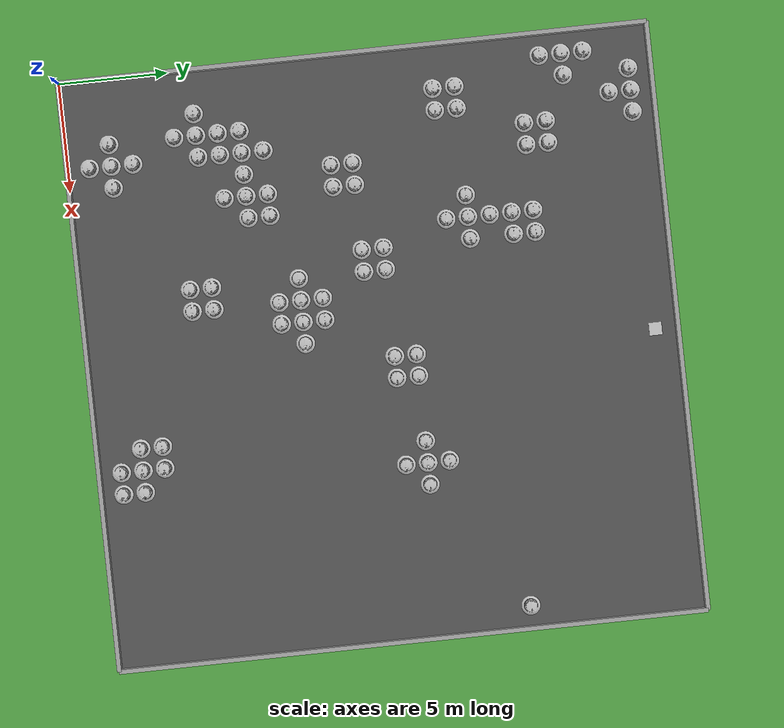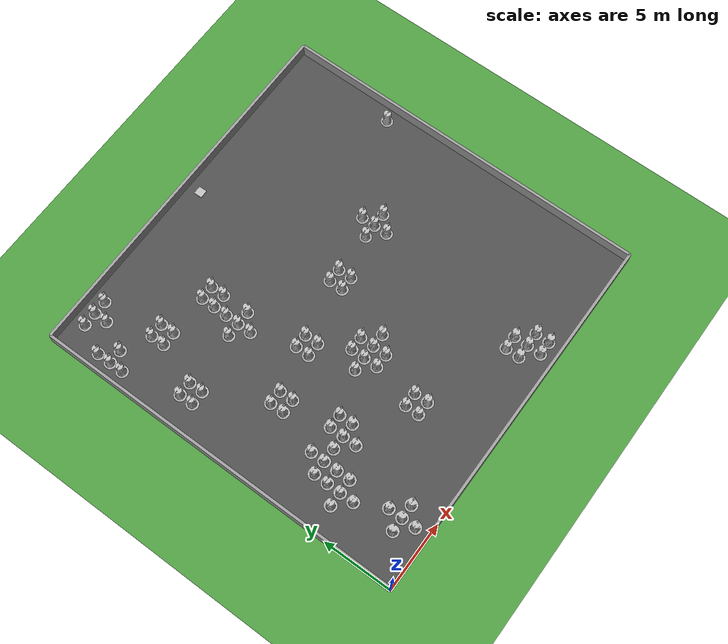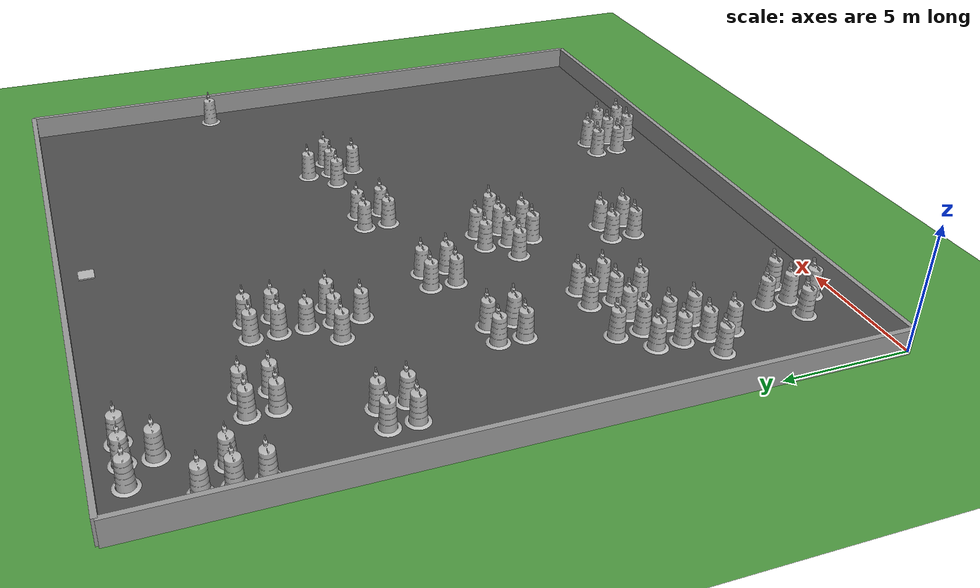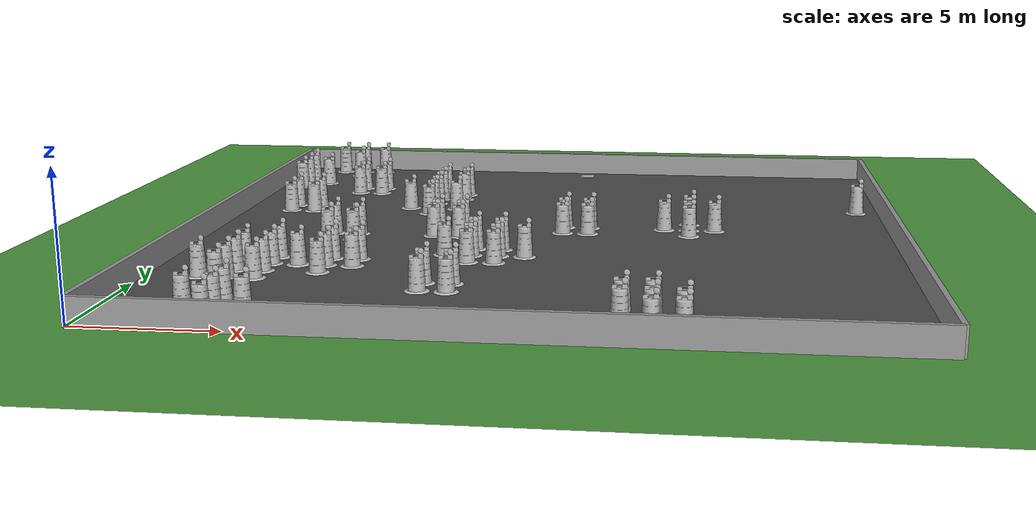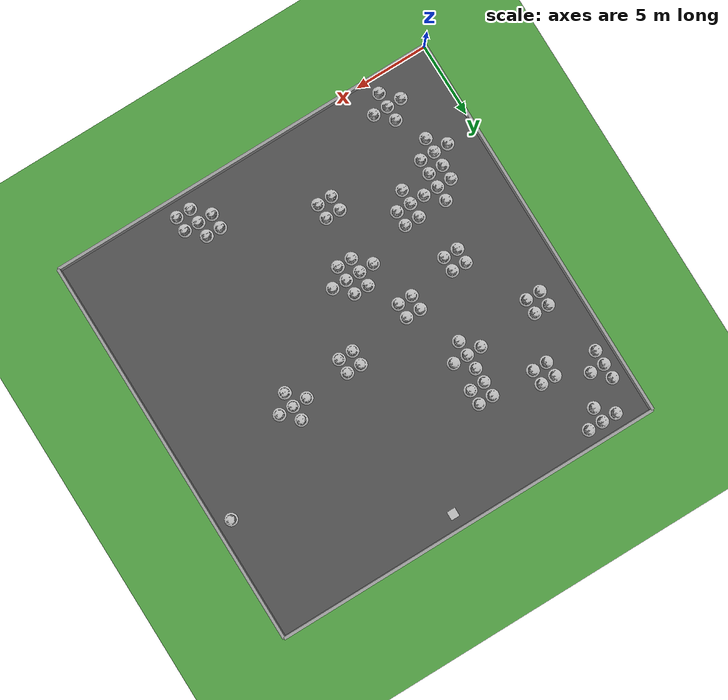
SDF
<sdf version="1.4">
 <world name="default">
  <model name="vrc_driving_terrain">
   <static>1</static>
   <link name="grass_plane">
    <visual name="visual_0">
     <cast_shadows>0</cast_shadows>
     <geometry><plane><normal>0 0 1</normal><size>150 150</size></plane></geometry>
     <material>
      <script>
       <uri>model://vrc_driving_terrain/materials/scripts</uri>
       <uri>model://vrc_driving_terrain/materials/textures</uri>
       <name>vrc/grass</name>
      </script>
     </material>
    </visual>
   </link>
   <pose>0 0 0.01 0 -0 0</pose>
  </model>
  <include><uri>model://ground_plane</uri></include>
  <include><uri>model://sun</uri></include>
  <plugin filename="librotors_gazebo_ros_interface_plugin.so" name="ros_interface_plugin"/>
  <spherical_coordinates>
   <surface_model>EARTH_WGS84</surface_model>
   <latitude_deg>47.3667</latitude_deg>
   <longitude_deg>8.5500</longitude_deg>
   <elevation>500.0</elevation>
   <heading_deg>0</heading_deg>
  </spherical_coordinates>
  <physics type="ode">
   <ode>
    <solver><type>quick</type><iters>1000</iters><sor>1.3</sor></solver>
    <constraints>
     <cfm>0</cfm>
     <erp>0.2</erp>
     <contact_max_correcting_vel>100</contact_max_correcting_vel>
     <contact_surface_layer>0.001</contact_surface_layer>
    </constraints>
   </ode>
   <max_step_size>0.01</max_step_size>
   <real_time_factor>1</real_time_factor>
   <real_time_update_rate>100</real_time_update_rate>
   <gravity>0 0 -9.8</gravity>
  </physics>
  <model name="box_target_green">
   <static>1</static>
   <link name="link">
    <pose>14 26 0 0 0 0</pose>
    <collision name="collision"><geometry><box><size>6 6 2</size></box></geometry></collision>
    <visual name="visual">
     <geometry>
      <mesh><uri>model://box_target_green/meshes/mesh.dae</uri><scale>0.1 0.1 0.1</scale></mesh>
     </geometry>
    </visual>
   </link>
  </model>
  <model name="grey_wall">
   <static>1</static>
   <link name="link">
    <visual name="visual">
     <cast_shadows>0</cast_shadows>
     <geometry><box><size>27 0.2 2</size></box></geometry>
     <material>
      <script>
       <uri>model://grey_wall/materials/scripts</uri>
       <uri>model://grey_wall/materials/textures</uri>
       <name>vrc/grey_wall</name>
      </script>
     </material>
    </visual>
   </link>
   <pose>13.5 0 0 0 0 0</pose>
  </model>
  <model name="grey_wall">
   <static>1</static>
   <link name="link">
    <visual name="visual">
     <cast_shadows>0</cast_shadows>
     <geometry><box><size>27 0.2 2</size></box></geometry>
     <material>
      <script>
       <uri>model://grey_wall/materials/scripts</uri>
       <uri>model://grey_wall/materials/textures</uri>
       <name>vrc/grey_wall</name>
      </script>
     </material>
    </visual>
   </link>
   <pose>0 13.5 0 0 0 1.57079632679</pose>
  </model>
  <model name="grey_wall">
   <static>1</static>
   <link name="link">
    <visual name="visual">
     <cast_shadows>0</cast_shadows>
     <geometry><box><size>27 0.2 2</size></box></geometry>
     <material>
      <script>
       <uri>model://grey_wall/materials/scripts</uri>
       <uri>model://grey_wall/materials/textures</uri>
       <name>vrc/grey_wall</name>
      </script>
     </material>
    </visual>
   </link>
   <pose>27 13.5 0 0 0 -1.57079632679</pose>
  </model>
  <model name="grey_wall">
   <static>1</static>
   <link name="link">
    <visual name="visual">
     <cast_shadows>0</cast_shadows>
     <geometry><box><size>27 0.2 2</size></box></geometry>
     <material>
      <script>
       <uri>model://grey_wall/materials/scripts</uri>
       <uri>model://grey_wall/materials/textures</uri>
       <name>vrc/grey_wall</name>
      </script>
     </material>
    </visual>
   </link>
   <pose>13.5 27 0 0 0 3.14159265359</pose>
  </model>
  <model name="asphalt_plane">
   <static>1</static>
   <link name="link">
    <visual name="visual">
     <cast_shadows>0</cast_shadows>
     <geometry><box><size>27 27 0.1</size></box></geometry>
     <material>
      <script>
       <uri>model://asphalt_plane/materials/scripts</uri>
       <uri>model://asphalt_plane/materials/textures</uri>
       <name>vrc/asphalt</name>
      </script>
     </material>
    </visual>
   </link>
   <pose>13.5 13.5 0 0 0 0</pose>
  </model>
  <model name="Construction Barrel">
   <link name="link">
    <collision name="collision">
     <geometry>
      <mesh><uri>model://construction_barrel/meshes/construction_barrel.dae</uri><scale>1 1 1</scale></mesh>
     </geometry>
    </collision>
    <visual name="visual">
     <geometry><mesh><uri>model://construction_barrel/meshes/construction_barrel.dae</uri></mesh></geometry>
    </visual>
   </link>
   <pose>1 22 0 0 0 0</pose>
   <static>1</static>
  </model>
  <model name="Construction Barrel">
   <link name="link">
    <collision name="collision">
     <geometry>
      <mesh><uri>model://construction_barrel/meshes/construction_barrel.dae</uri><scale>1 1 1</scale></mesh>
     </geometry>
    </collision>
    <visual name="visual">
     <geometry><mesh><uri>model://construction_barrel/meshes/construction_barrel.dae</uri></mesh></geometry>
    </visual>
   </link>
   <pose>1 23 0 0 0 0</pose>
   <static>1</static>
  </model>
  <model name="Construction Barrel">
   <link name="link">
    <collision name="collision">
     <geometry>
      <mesh><uri>model://construction_barrel/meshes/construction_barrel.dae</uri><scale>1 1 1</scale></mesh>
     </geometry>
    </collision>
    <visual name="visual">
     <geometry><mesh><uri>model://construction_barrel/meshes/construction_barrel.dae</uri></mesh></geometry>
    </visual>
   </link>
   <pose>1 24 0 0 0 0</pose>
   <static>1</static>
  </model>
  <model name="Construction Barrel">
   <link name="link">
    <collision name="collision">
     <geometry>
      <mesh><uri>model://construction_barrel/meshes/construction_barrel.dae</uri><scale>1 1 1</scale></mesh>
     </geometry>
    </collision>
    <visual name="visual">
     <geometry><mesh><uri>model://construction_barrel/meshes/construction_barrel.dae</uri></mesh></geometry>
    </visual>
   </link>
   <pose>2 6 0 0 0 0</pose>
   <static>1</static>
  </model>
  <model name="Construction Barrel">
   <link name="link">
    <collision name="collision">
     <geometry>
      <mesh><uri>model://construction_barrel/meshes/construction_barrel.dae</uri><scale>1 1 1</scale></mesh>
     </geometry>
    </collision>
    <visual name="visual">
     <geometry><mesh><uri>model://construction_barrel/meshes/construction_barrel.dae</uri></mesh></geometry>
    </visual>
   </link>
   <pose>2 17 0 0 0 0</pose>
   <static>1</static>
  </model>
  <model name="Construction Barrel">
   <link name="link">
    <collision name="collision">
     <geometry>
      <mesh><uri>model://construction_barrel/meshes/construction_barrel.dae</uri><scale>1 1 1</scale></mesh>
     </geometry>
    </collision>
    <visual name="visual">
     <geometry><mesh><uri>model://construction_barrel/meshes/construction_barrel.dae</uri></mesh></geometry>
    </visual>
   </link>
   <pose>2 18 0 0 0 0</pose>
   <static>1</static>
  </model>
  <model name="Construction Barrel">
   <link name="link">
    <collision name="collision">
     <geometry>
      <mesh><uri>model://construction_barrel/meshes/construction_barrel.dae</uri><scale>1 1 1</scale></mesh>
     </geometry>
    </collision>
    <visual name="visual">
     <geometry><mesh><uri>model://construction_barrel/meshes/construction_barrel.dae</uri></mesh></geometry>
    </visual>
   </link>
   <pose>2 23 0 0 0 0</pose>
   <static>1</static>
  </model>
  <model name="Construction Barrel">
   <link name="link">
    <collision name="collision">
     <geometry>
      <mesh><uri>model://construction_barrel/meshes/construction_barrel.dae</uri><scale>1 1 1</scale></mesh>
     </geometry>
    </collision>
    <visual name="visual">
     <geometry><mesh><uri>model://construction_barrel/meshes/construction_barrel.dae</uri></mesh></geometry>
    </visual>
   </link>
   <pose>2 26 0 0 0 0</pose>
   <static>1</static>
  </model>
  <model name="Construction Barrel">
   <link name="link">
    <collision name="collision">
     <geometry>
      <mesh><uri>model://construction_barrel/meshes/construction_barrel.dae</uri><scale>1 1 1</scale></mesh>
     </geometry>
    </collision>
    <visual name="visual">
     <geometry><mesh><uri>model://construction_barrel/meshes/construction_barrel.dae</uri></mesh></geometry>
    </visual>
   </link>
   <pose>3 2 0 0 0 0</pose>
   <static>1</static>
  </model>
  <model name="Construction Barrel">
   <link name="link">
    <collision name="collision">
     <geometry>
      <mesh><uri>model://construction_barrel/meshes/construction_barrel.dae</uri><scale>1 1 1</scale></mesh>
     </geometry>
    </collision>
    <visual name="visual">
     <geometry><mesh><uri>model://construction_barrel/meshes/construction_barrel.dae</uri></mesh></geometry>
    </visual>
   </link>
   <pose>3 5 0 0 0 0</pose>
   <static>1</static>
  </model>
  <model name="Construction Barrel">
   <link name="link">
    <collision name="collision">
     <geometry>
      <mesh><uri>model://construction_barrel/meshes/construction_barrel.dae</uri><scale>1 1 1</scale></mesh>
     </geometry>
    </collision>
    <visual name="visual">
     <geometry><mesh><uri>model://construction_barrel/meshes/construction_barrel.dae</uri></mesh></geometry>
    </visual>
   </link>
   <pose>3 6 0 0 0 0</pose>
   <static>1</static>
  </model>
  <model name="Construction Barrel">
   <link name="link">
    <collision name="collision">
     <geometry>
      <mesh><uri>model://construction_barrel/meshes/construction_barrel.dae</uri><scale>1 1 1</scale></mesh>
     </geometry>
    </collision>
    <visual name="visual">
     <geometry><mesh><uri>model://construction_barrel/meshes/construction_barrel.dae</uri></mesh></geometry>
    </visual>
   </link>
   <pose>3 7 0 0 0 0</pose>
   <static>1</static>
  </model>
  <model name="Construction Barrel">
   <link name="link">
    <collision name="collision">
     <geometry>
      <mesh><uri>model://construction_barrel/meshes/construction_barrel.dae</uri><scale>1 1 1</scale></mesh>
     </geometry>
    </collision>
    <visual name="visual">
     <geometry><mesh><uri>model://construction_barrel/meshes/construction_barrel.dae</uri></mesh></geometry>
    </visual>
   </link>
   <pose>3 8 0 0 0 0</pose>
   <static>1</static>
  </model>
  <model name="Construction Barrel">
   <link name="link">
    <collision name="collision">
     <geometry>
      <mesh><uri>model://construction_barrel/meshes/construction_barrel.dae</uri><scale>1 1 1</scale></mesh>
     </geometry>
    </collision>
    <visual name="visual">
     <geometry><mesh><uri>model://construction_barrel/meshes/construction_barrel.dae</uri></mesh></geometry>
    </visual>
   </link>
   <pose>3 17 0 0 0 0</pose>
   <static>1</static>
  </model>
  <model name="Construction Barrel">
   <link name="link">
    <collision name="collision">
     <geometry>
      <mesh><uri>model://construction_barrel/meshes/construction_barrel.dae</uri><scale>1 1 1</scale></mesh>
     </geometry>
    </collision>
    <visual name="visual">
     <geometry><mesh><uri>model://construction_barrel/meshes/construction_barrel.dae</uri></mesh></geometry>
    </visual>
   </link>
   <pose>3 18 0 0 0 0</pose>
   <static>1</static>
  </model>
  <model name="Construction Barrel">
   <link name="link">
    <collision name="collision">
     <geometry>
      <mesh><uri>model://construction_barrel/meshes/construction_barrel.dae</uri><scale>1 1 1</scale></mesh>
     </geometry>
    </collision>
    <visual name="visual">
     <geometry><mesh><uri>model://construction_barrel/meshes/construction_barrel.dae</uri></mesh></geometry>
    </visual>
   </link>
   <pose>3 25 0 0 0 0</pose>
   <static>1</static>
  </model>
  <model name="Construction Barrel">
   <link name="link">
    <collision name="collision">
     <geometry>
      <mesh><uri>model://construction_barrel/meshes/construction_barrel.dae</uri><scale>1 1 1</scale></mesh>
     </geometry>
    </collision>
    <visual name="visual">
     <geometry><mesh><uri>model://construction_barrel/meshes/construction_barrel.dae</uri></mesh></geometry>
    </visual>
   </link>
   <pose>3 26 0 0 0 0</pose>
   <static>1</static>
  </model>
  <model name="Construction Barrel">
   <link name="link">
    <collision name="collision">
     <geometry>
      <mesh><uri>model://construction_barrel/meshes/construction_barrel.dae</uri><scale>1 1 1</scale></mesh>
     </geometry>
    </collision>
    <visual name="visual">
     <geometry><mesh><uri>model://construction_barrel/meshes/construction_barrel.dae</uri></mesh></geometry>
    </visual>
   </link>
   <pose>4 1 0 0 0 0</pose>
   <static>1</static>
  </model>
  <model name="Construction Barrel">
   <link name="link">
    <collision name="collision">
     <geometry>
      <mesh><uri>model://construction_barrel/meshes/construction_barrel.dae</uri><scale>1 1 1</scale></mesh>
     </geometry>
    </collision>
    <visual name="visual">
     <geometry><mesh><uri>model://construction_barrel/meshes/construction_barrel.dae</uri></mesh></geometry>
    </visual>
   </link>
   <pose>4 2 0 0 0 0</pose>
   <static>1</static>
  </model>
  <model name="Construction Barrel">
   <link name="link">
    <collision name="collision">
     <geometry>
      <mesh><uri>model://construction_barrel/meshes/construction_barrel.dae</uri><scale>1 1 1</scale></mesh>
     </geometry>
    </collision>
    <visual name="visual">
     <geometry><mesh><uri>model://construction_barrel/meshes/construction_barrel.dae</uri></mesh></geometry>
    </visual>
   </link>
   <pose>4 3 0 0 0 0</pose>
   <static>1</static>
  </model>
  <model name="Construction Barrel">
   <link name="link">
    <collision name="collision">
     <geometry>
      <mesh><uri>model://construction_barrel/meshes/construction_barrel.dae</uri><scale>1 1 1</scale></mesh>
     </geometry>
    </collision>
    <visual name="visual">
     <geometry><mesh><uri>model://construction_barrel/meshes/construction_barrel.dae</uri></mesh></geometry>
    </visual>
   </link>
   <pose>4 6 0 0 0 0</pose>
   <static>1</static>
  </model>
  <model name="Construction Barrel">
   <link name="link">
    <collision name="collision">
     <geometry>
      <mesh><uri>model://construction_barrel/meshes/construction_barrel.dae</uri><scale>1 1 1</scale></mesh>
     </geometry>
    </collision>
    <visual name="visual">
     <geometry><mesh><uri>model://construction_barrel/meshes/construction_barrel.dae</uri></mesh></geometry>
    </visual>
   </link>
   <pose>4 7 0 0 0 0</pose>
   <static>1</static>
  </model>
  <model name="Construction Barrel">
   <link name="link">
    <collision name="collision">
     <geometry>
      <mesh><uri>model://construction_barrel/meshes/construction_barrel.dae</uri><scale>1 1 1</scale></mesh>
     </geometry>
    </collision>
    <visual name="visual">
     <geometry><mesh><uri>model://construction_barrel/meshes/construction_barrel.dae</uri></mesh></geometry>
    </visual>
   </link>
   <pose>4 8 0 0 0 0</pose>
   <static>1</static>
  </model>
  <model name="Construction Barrel">
   <link name="link">
    <collision name="collision">
     <geometry>
      <mesh><uri>model://construction_barrel/meshes/construction_barrel.dae</uri><scale>1 1 1</scale></mesh>
     </geometry>
    </collision>
    <visual name="visual">
     <geometry><mesh><uri>model://construction_barrel/meshes/construction_barrel.dae</uri></mesh></geometry>
    </visual>
   </link>
   <pose>4 9 0 0 0 0</pose>
   <static>1</static>
  </model>
  <model name="Construction Barrel">
   <link name="link">
    <collision name="collision">
     <geometry>
      <mesh><uri>model://construction_barrel/meshes/construction_barrel.dae</uri><scale>1 1 1</scale></mesh>
     </geometry>
    </collision>
    <visual name="visual">
     <geometry><mesh><uri>model://construction_barrel/meshes/construction_barrel.dae</uri></mesh></geometry>
    </visual>
   </link>
   <pose>4 21 0 0 0 0</pose>
   <static>1</static>
  </model>
  <model name="Construction Barrel">
   <link name="link">
    <collision name="collision">
     <geometry>
      <mesh><uri>model://construction_barrel/meshes/construction_barrel.dae</uri><scale>1 1 1</scale></mesh>
     </geometry>
    </collision>
    <visual name="visual">
     <geometry><mesh><uri>model://construction_barrel/meshes/construction_barrel.dae</uri></mesh></geometry>
    </visual>
   </link>
   <pose>4 22 0 0 0 0</pose>
   <static>1</static>
  </model>
  <model name="Construction Barrel">
   <link name="link">
    <collision name="collision">
     <geometry>
      <mesh><uri>model://construction_barrel/meshes/construction_barrel.dae</uri><scale>1 1 1</scale></mesh>
     </geometry>
    </collision>
    <visual name="visual">
     <geometry><mesh><uri>model://construction_barrel/meshes/construction_barrel.dae</uri></mesh></geometry>
    </visual>
   </link>
   <pose>4 26 0 0 0 0</pose>
   <static>1</static>
  </model>
  <model name="Construction Barrel">
   <link name="link">
    <collision name="collision">
     <geometry>
      <mesh><uri>model://construction_barrel/meshes/construction_barrel.dae</uri><scale>1 1 1</scale></mesh>
     </geometry>
    </collision>
    <visual name="visual">
     <geometry><mesh><uri>model://construction_barrel/meshes/construction_barrel.dae</uri></mesh></geometry>
    </visual>
   </link>
   <pose>5 2 0 0 0 0</pose>
   <static>1</static>
  </model>
  <model name="Construction Barrel">
   <link name="link">
    <collision name="collision">
     <geometry>
      <mesh><uri>model://construction_barrel/meshes/construction_barrel.dae</uri><scale>1 1 1</scale></mesh>
     </geometry>
    </collision>
    <visual name="visual">
     <geometry><mesh><uri>model://construction_barrel/meshes/construction_barrel.dae</uri></mesh></geometry>
    </visual>
   </link>
   <pose>5 8 0 0 0 0</pose>
   <static>1</static>
  </model>
  <model name="Construction Barrel">
   <link name="link">
    <collision name="collision">
     <geometry>
      <mesh><uri>model://construction_barrel/meshes/construction_barrel.dae</uri><scale>1 1 1</scale></mesh>
     </geometry>
    </collision>
    <visual name="visual">
     <geometry><mesh><uri>model://construction_barrel/meshes/construction_barrel.dae</uri></mesh></geometry>
    </visual>
   </link>
   <pose>5 12 0 0 0 0</pose>
   <static>1</static>
  </model>
  <model name="Construction Barrel">
   <link name="link">
    <collision name="collision">
     <geometry>
      <mesh><uri>model://construction_barrel/meshes/construction_barrel.dae</uri><scale>1 1 1</scale></mesh>
     </geometry>
    </collision>
    <visual name="visual">
     <geometry><mesh><uri>model://construction_barrel/meshes/construction_barrel.dae</uri></mesh></geometry>
    </visual>
   </link>
   <pose>5 13 0 0 0 0</pose>
   <static>1</static>
  </model>
  <model name="Construction Barrel">
   <link name="link">
    <collision name="collision">
     <geometry>
      <mesh><uri>model://construction_barrel/meshes/construction_barrel.dae</uri><scale>1 1 1</scale></mesh>
     </geometry>
    </collision>
    <visual name="visual">
     <geometry><mesh><uri>model://construction_barrel/meshes/construction_barrel.dae</uri></mesh></geometry>
    </visual>
   </link>
   <pose>5 21 0 0 0 0</pose>
   <static>1</static>
  </model>
  <model name="Construction Barrel">
   <link name="link">
    <collision name="collision">
     <geometry>
      <mesh><uri>model://construction_barrel/meshes/construction_barrel.dae</uri><scale>1 1 1</scale></mesh>
     </geometry>
    </collision>
    <visual name="visual">
     <geometry><mesh><uri>model://construction_barrel/meshes/construction_barrel.dae</uri></mesh></geometry>
    </visual>
   </link>
   <pose>5 22 0 0 0 0</pose>
   <static>1</static>
  </model>
  <model name="Construction Barrel">
   <link name="link">
    <collision name="collision">
     <geometry>
      <mesh><uri>model://construction_barrel/meshes/construction_barrel.dae</uri><scale>1 1 1</scale></mesh>
     </geometry>
    </collision>
    <visual name="visual">
     <geometry><mesh><uri>model://construction_barrel/meshes/construction_barrel.dae</uri></mesh></geometry>
    </visual>
   </link>
   <pose>6 7 0 0 0 0</pose>
   <static>1</static>
  </model>
  <model name="Construction Barrel">
   <link name="link">
    <collision name="collision">
     <geometry>
      <mesh><uri>model://construction_barrel/meshes/construction_barrel.dae</uri><scale>1 1 1</scale></mesh>
     </geometry>
    </collision>
    <visual name="visual">
     <geometry><mesh><uri>model://construction_barrel/meshes/construction_barrel.dae</uri></mesh></geometry>
    </visual>
   </link>
   <pose>6 8 0 0 0 0</pose>
   <static>1</static>
  </model>
  <model name="Construction Barrel">
   <link name="link">
    <collision name="collision">
     <geometry>
      <mesh><uri>model://construction_barrel/meshes/construction_barrel.dae</uri><scale>1 1 1</scale></mesh>
     </geometry>
    </collision>
    <visual name="visual">
     <geometry><mesh><uri>model://construction_barrel/meshes/construction_barrel.dae</uri></mesh></geometry>
    </visual>
   </link>
   <pose>6 9 0 0 0 0</pose>
   <static>1</static>
  </model>
  <model name="Construction Barrel">
   <link name="link">
    <collision name="collision">
     <geometry>
      <mesh><uri>model://construction_barrel/meshes/construction_barrel.dae</uri><scale>1 1 1</scale></mesh>
     </geometry>
    </collision>
    <visual name="visual">
     <geometry><mesh><uri>model://construction_barrel/meshes/construction_barrel.dae</uri></mesh></geometry>
    </visual>
   </link>
   <pose>6 12 0 0 0 0</pose>
   <static>1</static>
  </model>
  <model name="Construction Barrel">
   <link name="link">
    <collision name="collision">
     <geometry>
      <mesh><uri>model://construction_barrel/meshes/construction_barrel.dae</uri><scale>1 1 1</scale></mesh>
     </geometry>
    </collision>
    <visual name="visual">
     <geometry><mesh><uri>model://construction_barrel/meshes/construction_barrel.dae</uri></mesh></geometry>
    </visual>
   </link>
   <pose>6 13 0 0 0 0</pose>
   <static>1</static>
  </model>
  <model name="Construction Barrel">
   <link name="link">
    <collision name="collision">
     <geometry>
      <mesh><uri>model://construction_barrel/meshes/construction_barrel.dae</uri><scale>1 1 1</scale></mesh>
     </geometry>
    </collision>
    <visual name="visual">
     <geometry><mesh><uri>model://construction_barrel/meshes/construction_barrel.dae</uri></mesh></geometry>
    </visual>
   </link>
   <pose>7 8 0 0 0 0</pose>
   <static>1</static>
  </model>
  <model name="Construction Barrel">
   <link name="link">
    <collision name="collision">
     <geometry>
      <mesh><uri>model://construction_barrel/meshes/construction_barrel.dae</uri><scale>1 1 1</scale></mesh>
     </geometry>
    </collision>
    <visual name="visual">
     <geometry><mesh><uri>model://construction_barrel/meshes/construction_barrel.dae</uri></mesh></geometry>
    </visual>
   </link>
   <pose>7 9 0 0 0 0</pose>
   <static>1</static>
  </model>
  <model name="Construction Barrel">
   <link name="link">
    <collision name="collision">
     <geometry>
      <mesh><uri>model://construction_barrel/meshes/construction_barrel.dae</uri><scale>1 1 1</scale></mesh>
     </geometry>
    </collision>
    <visual name="visual">
     <geometry><mesh><uri>model://construction_barrel/meshes/construction_barrel.dae</uri></mesh></geometry>
    </visual>
   </link>
   <pose>7 18 0 0 0 0</pose>
   <static>1</static>
  </model>
  <model name="Construction Barrel">
   <link name="link">
    <collision name="collision">
     <geometry>
      <mesh><uri>model://construction_barrel/meshes/construction_barrel.dae</uri><scale>1 1 1</scale></mesh>
     </geometry>
    </collision>
    <visual name="visual">
     <geometry><mesh><uri>model://construction_barrel/meshes/construction_barrel.dae</uri></mesh></geometry>
    </visual>
   </link>
   <pose>8 17 0 0 0 0</pose>
   <static>1</static>
  </model>
  <model name="Construction Barrel">
   <link name="link">
    <collision name="collision">
     <geometry>
      <mesh><uri>model://construction_barrel/meshes/construction_barrel.dae</uri><scale>1 1 1</scale></mesh>
     </geometry>
    </collision>
    <visual name="visual">
     <geometry><mesh><uri>model://construction_barrel/meshes/construction_barrel.dae</uri></mesh></geometry>
    </visual>
   </link>
   <pose>8 18 0 0 0 0</pose>
   <static>1</static>
  </model>
  <model name="Construction Barrel">
   <link name="link">
    <collision name="collision">
     <geometry>
      <mesh><uri>model://construction_barrel/meshes/construction_barrel.dae</uri><scale>1 1 1</scale></mesh>
     </geometry>
    </collision>
    <visual name="visual">
     <geometry><mesh><uri>model://construction_barrel/meshes/construction_barrel.dae</uri></mesh></geometry>
    </visual>
   </link>
   <pose>8 19 0 0 0 0</pose>
   <static>1</static>
  </model>
  <model name="Construction Barrel">
   <link name="link">
    <collision name="collision">
     <geometry>
      <mesh><uri>model://construction_barrel/meshes/construction_barrel.dae</uri><scale>1 1 1</scale></mesh>
     </geometry>
    </collision>
    <visual name="visual">
     <geometry><mesh><uri>model://construction_barrel/meshes/construction_barrel.dae</uri></mesh></geometry>
    </visual>
   </link>
   <pose>8 20 0 0 0 0</pose>
   <static>1</static>
  </model>
  <model name="Construction Barrel">
   <link name="link">
    <collision name="collision">
     <geometry>
      <mesh><uri>model://construction_barrel/meshes/construction_barrel.dae</uri><scale>1 1 1</scale></mesh>
     </geometry>
    </collision>
    <visual name="visual">
     <geometry><mesh><uri>model://construction_barrel/meshes/construction_barrel.dae</uri></mesh></geometry>
    </visual>
   </link>
   <pose>8 21 0 0 0 0</pose>
   <static>1</static>
  </model>
  <model name="Construction Barrel">
   <link name="link">
    <collision name="collision">
     <geometry>
      <mesh><uri>model://construction_barrel/meshes/construction_barrel.dae</uri><scale>1 1 1</scale></mesh>
     </geometry>
    </collision>
    <visual name="visual">
     <geometry><mesh><uri>model://construction_barrel/meshes/construction_barrel.dae</uri></mesh></geometry>
    </visual>
   </link>
   <pose>9 13 0 0 0 0</pose>
   <static>1</static>
  </model>
  <model name="Construction Barrel">
   <link name="link">
    <collision name="collision">
     <geometry>
      <mesh><uri>model://construction_barrel/meshes/construction_barrel.dae</uri><scale>1 1 1</scale></mesh>
     </geometry>
    </collision>
    <visual name="visual">
     <geometry><mesh><uri>model://construction_barrel/meshes/construction_barrel.dae</uri></mesh></geometry>
    </visual>
   </link>
   <pose>9 14 0 0 0 0</pose>
   <static>1</static>
  </model>
  <model name="Construction Barrel">
   <link name="link">
    <collision name="collision">
     <geometry>
      <mesh><uri>model://construction_barrel/meshes/construction_barrel.dae</uri><scale>1 1 1</scale></mesh>
     </geometry>
    </collision>
    <visual name="visual">
     <geometry><mesh><uri>model://construction_barrel/meshes/construction_barrel.dae</uri></mesh></geometry>
    </visual>
   </link>
   <pose>9 18 0 0 0 0</pose>
   <static>1</static>
  </model>
  <model name="Construction Barrel">
   <link name="link">
    <collision name="collision">
     <geometry>
      <mesh><uri>model://construction_barrel/meshes/construction_barrel.dae</uri><scale>1 1 1</scale></mesh>
     </geometry>
    </collision>
    <visual name="visual">
     <geometry><mesh><uri>model://construction_barrel/meshes/construction_barrel.dae</uri></mesh></geometry>
    </visual>
   </link>
   <pose>9 20 0 0 0 0</pose>
   <static>1</static>
  </model>
  <model name="Construction Barrel">
   <link name="link">
    <collision name="collision">
     <geometry>
      <mesh><uri>model://construction_barrel/meshes/construction_barrel.dae</uri><scale>1 1 1</scale></mesh>
     </geometry>
    </collision>
    <visual name="visual">
     <geometry><mesh><uri>model://construction_barrel/meshes/construction_barrel.dae</uri></mesh></geometry>
    </visual>
   </link>
   <pose>9 21 0 0 0 0</pose>
   <static>1</static>
  </model>
  <model name="Construction Barrel">
   <link name="link">
    <collision name="collision">
     <geometry>
      <mesh><uri>model://construction_barrel/meshes/construction_barrel.dae</uri><scale>1 1 1</scale></mesh>
     </geometry>
    </collision>
    <visual name="visual">
     <geometry><mesh><uri>model://construction_barrel/meshes/construction_barrel.dae</uri></mesh></geometry>
    </visual>
   </link>
   <pose>10 5 0 0 0 0</pose>
   <static>1</static>
  </model>
  <model name="Construction Barrel">
   <link name="link">
    <collision name="collision">
     <geometry>
      <mesh><uri>model://construction_barrel/meshes/construction_barrel.dae</uri><scale>1 1 1</scale></mesh>
     </geometry>
    </collision>
    <visual name="visual">
     <geometry><mesh><uri>model://construction_barrel/meshes/construction_barrel.dae</uri></mesh></geometry>
    </visual>
   </link>
   <pose>10 6 0 0 0 0</pose>
   <static>1</static>
  </model>
  <model name="Construction Barrel">
   <link name="link">
    <collision name="collision">
     <geometry>
      <mesh><uri>model://construction_barrel/meshes/construction_barrel.dae</uri><scale>1 1 1</scale></mesh>
     </geometry>
    </collision>
    <visual name="visual">
     <geometry><mesh><uri>model://construction_barrel/meshes/construction_barrel.dae</uri></mesh></geometry>
    </visual>
   </link>
   <pose>10 10 0 0 0 0</pose>
   <static>1</static>
  </model>
  <model name="Construction Barrel">
   <link name="link">
    <collision name="collision">
     <geometry>
      <mesh><uri>model://construction_barrel/meshes/construction_barrel.dae</uri><scale>1 1 1</scale></mesh>
     </geometry>
    </collision>
    <visual name="visual">
     <geometry><mesh><uri>model://construction_barrel/meshes/construction_barrel.dae</uri></mesh></geometry>
    </visual>
   </link>
   <pose>10 13 0 0 0 0</pose>
   <static>1</static>
  </model>
  <model name="Construction Barrel">
   <link name="link">
    <collision name="collision">
     <geometry>
      <mesh><uri>model://construction_barrel/meshes/construction_barrel.dae</uri><scale>1 1 1</scale></mesh>
     </geometry>
    </collision>
    <visual name="visual">
     <geometry><mesh><uri>model://construction_barrel/meshes/construction_barrel.dae</uri></mesh></geometry>
    </visual>
   </link>
   <pose>10 14 0 0 0 0</pose>
   <static>1</static>
  </model>
  <model name="Construction Barrel">
   <link name="link">
    <collision name="collision">
     <geometry>
      <mesh><uri>model://construction_barrel/meshes/construction_barrel.dae</uri><scale>1 1 1</scale></mesh>
     </geometry>
    </collision>
    <visual name="visual">
     <geometry><mesh><uri>model://construction_barrel/meshes/construction_barrel.dae</uri></mesh></geometry>
    </visual>
   </link>
   <pose>11 5 0 0 0 0</pose>
   <static>1</static>
  </model>
  <model name="Construction Barrel">
   <link name="link">
    <collision name="collision">
     <geometry>
      <mesh><uri>model://construction_barrel/meshes/construction_barrel.dae</uri><scale>1 1 1</scale></mesh>
     </geometry>
    </collision>
    <visual name="visual">
     <geometry><mesh><uri>model://construction_barrel/meshes/construction_barrel.dae</uri></mesh></geometry>
    </visual>
   </link>
   <pose>11 6 0 0 0 0</pose>
   <static>1</static>
  </model>
  <model name="Construction Barrel">
   <link name="link">
    <collision name="collision">
     <geometry>
      <mesh><uri>model://construction_barrel/meshes/construction_barrel.dae</uri><scale>1 1 1</scale></mesh>
     </geometry>
    </collision>
    <visual name="visual">
     <geometry><mesh><uri>model://construction_barrel/meshes/construction_barrel.dae</uri></mesh></geometry>
    </visual>
   </link>
   <pose>11 9 0 0 0 0</pose>
   <static>1</static>
  </model>
  <model name="Construction Barrel">
   <link name="link">
    <collision name="collision">
     <geometry>
      <mesh><uri>model://construction_barrel/meshes/construction_barrel.dae</uri><scale>1 1 1</scale></mesh>
     </geometry>
    </collision>
    <visual name="visual">
     <geometry><mesh><uri>model://construction_barrel/meshes/construction_barrel.dae</uri></mesh></geometry>
    </visual>
   </link>
   <pose>11 10 0 0 0 0</pose>
   <static>1</static>
  </model>
  <model name="Construction Barrel">
   <link name="link">
    <collision name="collision">
     <geometry>
      <mesh><uri>model://construction_barrel/meshes/construction_barrel.dae</uri><scale>1 1 1</scale></mesh>
     </geometry>
    </collision>
    <visual name="visual">
     <geometry><mesh><uri>model://construction_barrel/meshes/construction_barrel.dae</uri></mesh></geometry>
    </visual>
   </link>
   <pose>11 11 0 0 0 0</pose>
   <static>1</static>
  </model>
  <model name="Construction Barrel">
   <link name="link">
    <collision name="collision">
     <geometry>
      <mesh><uri>model://construction_barrel/meshes/construction_barrel.dae</uri><scale>1 1 1</scale></mesh>
     </geometry>
    </collision>
    <visual name="visual">
     <geometry><mesh><uri>model://construction_barrel/meshes/construction_barrel.dae</uri></mesh></geometry>
    </visual>
   </link>
   <pose>12 9 0 0 0 0</pose>
   <static>1</static>
  </model>
  <model name="Construction Barrel">
   <link name="link">
    <collision name="collision">
     <geometry>
      <mesh><uri>model://construction_barrel/meshes/construction_barrel.dae</uri><scale>1 1 1</scale></mesh>
     </geometry>
    </collision>
    <visual name="visual">
     <geometry><mesh><uri>model://construction_barrel/meshes/construction_barrel.dae</uri></mesh></geometry>
    </visual>
   </link>
   <pose>12 10 0 0 0 0</pose>
   <static>1</static>
  </model>
  <model name="Construction Barrel">
   <link name="link">
    <collision name="collision">
     <geometry>
      <mesh><uri>model://construction_barrel/meshes/construction_barrel.dae</uri><scale>1 1 1</scale></mesh>
     </geometry>
    </collision>
    <visual name="visual">
     <geometry><mesh><uri>model://construction_barrel/meshes/construction_barrel.dae</uri></mesh></geometry>
    </visual>
   </link>
   <pose>12 11 0 0 0 0</pose>
   <static>1</static>
  </model>
  <model name="Construction Barrel">
   <link name="link">
    <collision name="collision">
     <geometry>
      <mesh><uri>model://construction_barrel/meshes/construction_barrel.dae</uri><scale>1 1 1</scale></mesh>
     </geometry>
    </collision>
    <visual name="visual">
     <geometry><mesh><uri>model://construction_barrel/meshes/construction_barrel.dae</uri></mesh></geometry>
    </visual>
   </link>
   <pose>13 10 0 0 0 0</pose>
   <static>1</static>
  </model>
  <model name="Construction Barrel">
   <link name="link">
    <collision name="collision">
     <geometry>
      <mesh><uri>model://construction_barrel/meshes/construction_barrel.dae</uri><scale>1 1 1</scale></mesh>
     </geometry>
    </collision>
    <visual name="visual">
     <geometry><mesh><uri>model://construction_barrel/meshes/construction_barrel.dae</uri></mesh></geometry>
    </visual>
   </link>
   <pose>14 14 0 0 0 0</pose>
   <static>1</static>
  </model>
  <model name="Construction Barrel">
   <link name="link">
    <collision name="collision">
     <geometry>
      <mesh><uri>model://construction_barrel/meshes/construction_barrel.dae</uri><scale>1 1 1</scale></mesh>
     </geometry>
    </collision>
    <visual name="visual">
     <geometry><mesh><uri>model://construction_barrel/meshes/construction_barrel.dae</uri></mesh></geometry>
    </visual>
   </link>
   <pose>14 15 0 0 0 0</pose>
   <static>1</static>
  </model>
  <model name="Construction Barrel">
   <link name="link">
    <collision name="collision">
     <geometry>
      <mesh><uri>model://construction_barrel/meshes/construction_barrel.dae</uri><scale>1 1 1</scale></mesh>
     </geometry>
    </collision>
    <visual name="visual">
     <geometry><mesh><uri>model://construction_barrel/meshes/construction_barrel.dae</uri></mesh></geometry>
    </visual>
   </link>
   <pose>15 14 0 0 0 0</pose>
   <static>1</static>
  </model>
  <model name="Construction Barrel">
   <link name="link">
    <collision name="collision">
     <geometry>
      <mesh><uri>model://construction_barrel/meshes/construction_barrel.dae</uri><scale>1 1 1</scale></mesh>
     </geometry>
    </collision>
    <visual name="visual">
     <geometry><mesh><uri>model://construction_barrel/meshes/construction_barrel.dae</uri></mesh></geometry>
    </visual>
   </link>
   <pose>15 15 0 0 0 0</pose>
   <static>1</static>
  </model>
  <model name="Construction Barrel">
   <link name="link">
    <collision name="collision">
     <geometry>
      <mesh><uri>model://construction_barrel/meshes/construction_barrel.dae</uri><scale>1 1 1</scale></mesh>
     </geometry>
    </collision>
    <visual name="visual">
     <geometry><mesh><uri>model://construction_barrel/meshes/construction_barrel.dae</uri></mesh></geometry>
    </visual>
   </link>
   <pose>17 2 0 0 0 0</pose>
   <static>1</static>
  </model>
  <model name="Construction Barrel">
   <link name="link">
    <collision name="collision">
     <geometry>
      <mesh><uri>model://construction_barrel/meshes/construction_barrel.dae</uri><scale>1 1 1</scale></mesh>
     </geometry>
    </collision>
    <visual name="visual">
     <geometry><mesh><uri>model://construction_barrel/meshes/construction_barrel.dae</uri></mesh></geometry>
    </visual>
   </link>
   <pose>17 3 0 0 0 0</pose>
   <static>1</static>
  </model>
  <model name="Construction Barrel">
   <link name="link">
    <collision name="collision">
     <geometry>
      <mesh><uri>model://construction_barrel/meshes/construction_barrel.dae</uri><scale>1 1 1</scale></mesh>
     </geometry>
    </collision>
    <visual name="visual">
     <geometry><mesh><uri>model://construction_barrel/meshes/construction_barrel.dae</uri></mesh></geometry>
    </visual>
   </link>
   <pose>18 1 0 0 0 0</pose>
   <static>1</static>
  </model>
  <model name="Construction Barrel">
   <link name="link">
    <collision name="collision">
     <geometry>
      <mesh><uri>model://construction_barrel/meshes/construction_barrel.dae</uri><scale>1 1 1</scale></mesh>
     </geometry>
    </collision>
    <visual name="visual">
     <geometry><mesh><uri>model://construction_barrel/meshes/construction_barrel.dae</uri></mesh></geometry>
    </visual>
   </link>
   <pose>18 2 0 0 0 0</pose>
   <static>1</static>
  </model>
  <model name="Construction Barrel">
   <link name="link">
    <collision name="collision">
     <geometry>
      <mesh><uri>model://construction_barrel/meshes/construction_barrel.dae</uri><scale>1 1 1</scale></mesh>
     </geometry>
    </collision>
    <visual name="visual">
     <geometry><mesh><uri>model://construction_barrel/meshes/construction_barrel.dae</uri></mesh></geometry>
    </visual>
   </link>
   <pose>18 3 0 0 0 0</pose>
   <static>1</static>
  </model>
  <model name="Construction Barrel">
   <link name="link">
    <collision name="collision">
     <geometry>
      <mesh><uri>model://construction_barrel/meshes/construction_barrel.dae</uri><scale>1 1 1</scale></mesh>
     </geometry>
    </collision>
    <visual name="visual">
     <geometry><mesh><uri>model://construction_barrel/meshes/construction_barrel.dae</uri></mesh></geometry>
    </visual>
   </link>
   <pose>18 15 0 0 0 0</pose>
   <static>1</static>
  </model>
  <model name="Construction Barrel">
   <link name="link">
    <collision name="collision">
     <geometry>
      <mesh><uri>model://construction_barrel/meshes/construction_barrel.dae</uri><scale>1 1 1</scale></mesh>
     </geometry>
    </collision>
    <visual name="visual">
     <geometry><mesh><uri>model://construction_barrel/meshes/construction_barrel.dae</uri></mesh></geometry>
    </visual>
   </link>
   <pose>19 1 0 0 0 0</pose>
   <static>1</static>
  </model>
  <model name="Construction Barrel">
   <link name="link">
    <collision name="collision">
     <geometry>
      <mesh><uri>model://construction_barrel/meshes/construction_barrel.dae</uri><scale>1 1 1</scale></mesh>
     </geometry>
    </collision>
    <visual name="visual">
     <geometry><mesh><uri>model://construction_barrel/meshes/construction_barrel.dae</uri></mesh></geometry>
    </visual>
   </link>
   <pose>19 2 0 0 0 0</pose>
   <static>1</static>
  </model>
  <model name="Construction Barrel">
   <link name="link">
    <collision name="collision">
     <geometry>
      <mesh><uri>model://construction_barrel/meshes/construction_barrel.dae</uri><scale>1 1 1</scale></mesh>
     </geometry>
    </collision>
    <visual name="visual">
     <geometry><mesh><uri>model://construction_barrel/meshes/construction_barrel.dae</uri></mesh></geometry>
    </visual>
   </link>
   <pose>19 14 0 0 0 0</pose>
   <static>1</static>
  </model>
  <model name="Construction Barrel">
   <link name="link">
    <collision name="collision">
     <geometry>
      <mesh><uri>model://construction_barrel/meshes/construction_barrel.dae</uri><scale>1 1 1</scale></mesh>
     </geometry>
    </collision>
    <visual name="visual">
     <geometry><mesh><uri>model://construction_barrel/meshes/construction_barrel.dae</uri></mesh></geometry>
    </visual>
   </link>
   <pose>19 15 0 0 0 0</pose>
   <static>1</static>
  </model>
  <model name="Construction Barrel">
   <link name="link">
    <collision name="collision">
     <geometry>
      <mesh><uri>model://construction_barrel/meshes/construction_barrel.dae</uri><scale>1 1 1</scale></mesh>
     </geometry>
    </collision>
    <visual name="visual">
     <geometry><mesh><uri>model://construction_barrel/meshes/construction_barrel.dae</uri></mesh></geometry>
    </visual>
   </link>
   <pose>19 16 0 0 0 0</pose>
   <static>1</static>
  </model>
  <model name="Construction Barrel">
   <link name="link">
    <collision name="collision">
     <geometry>
      <mesh><uri>model://construction_barrel/meshes/construction_barrel.dae</uri><scale>1 1 1</scale></mesh>
     </geometry>
    </collision>
    <visual name="visual">
     <geometry><mesh><uri>model://construction_barrel/meshes/construction_barrel.dae</uri></mesh></geometry>
    </visual>
   </link>
   <pose>20 15 0 0 0 0</pose>
   <static>1</static>
  </model>
  <model name="Construction Barrel">
   <link name="link">
    <collision name="collision">
     <geometry>
      <mesh><uri>model://construction_barrel/meshes/construction_barrel.dae</uri><scale>1 1 1</scale></mesh>
     </geometry>
    </collision>
    <visual name="visual">
     <geometry><mesh><uri>model://construction_barrel/meshes/construction_barrel.dae</uri></mesh></geometry>
    </visual>
   </link>
   <pose>26 19 0 0 0 0</pose>
   <static>1</static>
  </model>
 </world>
</sdf>
